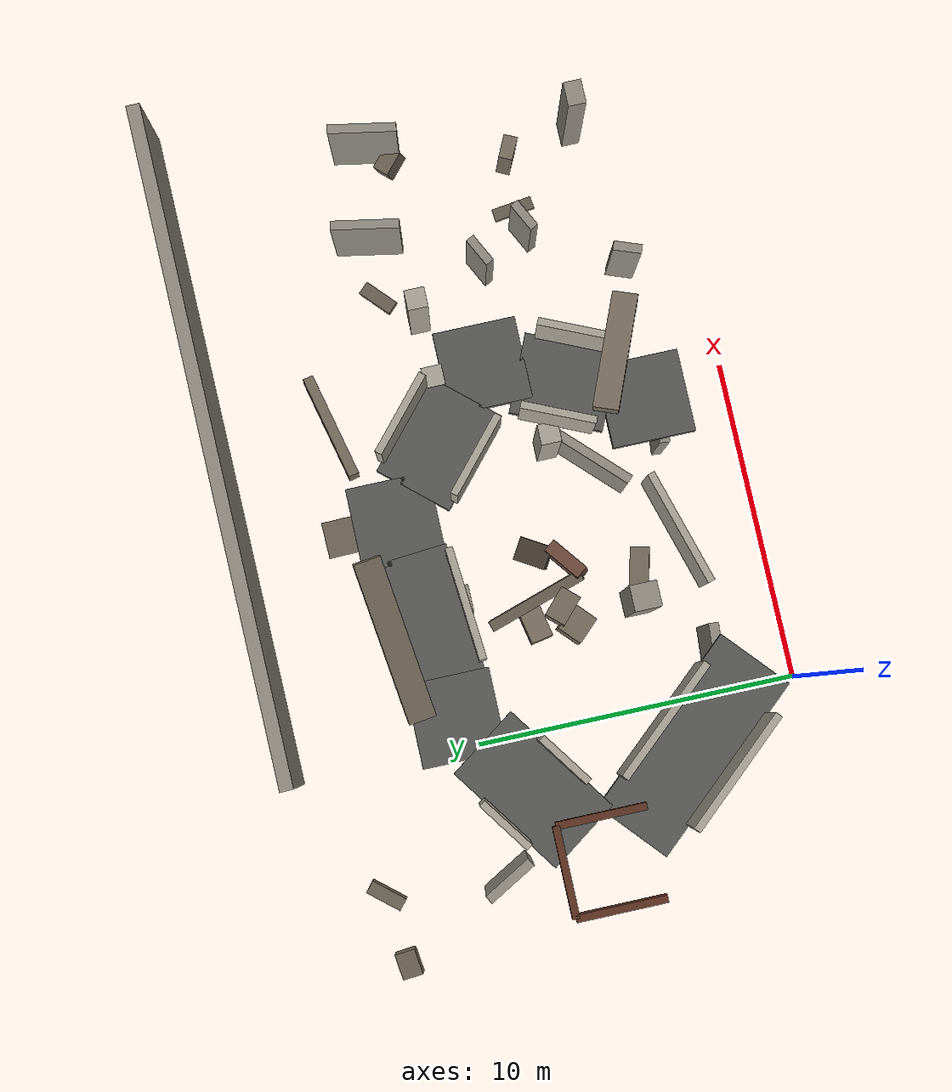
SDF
<sdf version="1.6">
 <model name="ruins_urban_01_medium">
  <static>true</static>
  <link name="002_north_boundary_east">
   <pose>10.50000 15.90000 1.80000 0.00000 0.00000 0.01500</pose>
   <visual name="visual">
    <geometry><box><size>21.00000 0.42000 3.60000</size></box></geometry>
    <material>
     <ambient>0.580 0.560 0.520 1</ambient>
     <diffuse>0.580 0.560 0.520 1</diffuse>
     <specular>0.03 0.03 0.03 1</specular>
    </material>
   </visual>
   <collision name="collision">
    <geometry><box><size>21.00000 0.42000 3.60000</size></box></geometry>
    <surface>
     <contact><collide_bitmask>0x01</collide_bitmask></contact>
     <friction><ode><mu>1.0</mu><mu2>1.0</mu2></ode></friction>
    </surface>
   </collision>
  </link>
  <link name="016_ground_corridor_n4_n5_left">
   <pose>-3.94751 9.97361 1.57500 0.00000 0.00000 -1.06370</pose>
   <visual name="visual">
    <geometry><box><size>1.64782 0.28000 3.15000</size></box></geometry>
    <material>
     <ambient>0.580 0.560 0.520 1</ambient>
     <diffuse>0.580 0.560 0.520 1</diffuse>
     <specular>0.03 0.03 0.03 1</specular>
    </material>
   </visual>
   <collision name="collision">
    <geometry><box><size>1.64782 0.28000 3.15000</size></box></geometry>
    <surface>
     <contact><collide_bitmask>0x01</collide_bitmask></contact>
     <friction><ode><mu>1.0</mu><mu2>1.0</mu2></ode></friction>
    </surface>
   </collision>
  </link>
  <link name="026_ground_corridor_g7_en1_left">
   <pose>10.85071 3.46194 1.57500 0.00000 0.00000 1.22007</pose>
   <visual name="visual">
    <geometry><box><size>0.86578 0.28000 3.15000</size></box></geometry>
    <material>
     <ambient>0.580 0.560 0.520 1</ambient>
     <diffuse>0.580 0.560 0.520 1</diffuse>
     <specular>0.03 0.03 0.03 1</specular>
    </material>
   </visual>
   <collision name="collision">
    <geometry><box><size>0.86578 0.28000 3.15000</size></box></geometry>
    <surface>
     <contact><collide_bitmask>0x01</collide_bitmask></contact>
     <friction><ode><mu>1.0</mu><mu2>1.0</mu2></ode></friction>
    </surface>
   </collision>
  </link>
  <link name="027_ground_corridor_g7_en1_right">
   <pose>13.64929 2.43806 1.57500 0.00000 0.00000 1.22007</pose>
   <visual name="visual">
    <geometry><box><size>0.86578 0.28000 3.15000</size></box></geometry>
    <material>
     <ambient>0.580 0.560 0.520 1</ambient>
     <diffuse>0.580 0.560 0.520 1</diffuse>
     <specular>0.03 0.03 0.03 1</specular>
    </material>
   </visual>
   <collision name="collision">
    <geometry><box><size>0.86578 0.28000 3.15000</size></box></geometry>
    <surface>
     <contact><collide_bitmask>0x01</collide_bitmask></contact>
     <friction><ode><mu>1.0</mu><mu2>1.0</mu2></ode></friction>
    </surface>
   </collision>
  </link>
  <link name="028_ground_corridor_en1_en2_left">
   <pose>14.61316 6.77368 1.37500 0.00000 0.00000 0.46365</pose>
   <visual name="visual">
    <geometry><box><size>0.97214 0.28000 2.75000</size></box></geometry>
    <material>
     <ambient>0.580 0.560 0.520 1</ambient>
     <diffuse>0.580 0.560 0.520 1</diffuse>
     <specular>0.03 0.03 0.03 1</specular>
    </material>
   </visual>
   <collision name="collision">
    <geometry><box><size>0.97214 0.28000 2.75000</size></box></geometry>
    <surface>
     <contact><collide_bitmask>0x01</collide_bitmask></contact>
     <friction><ode><mu>1.0</mu><mu2>1.0</mu2></ode></friction>
    </surface>
   </collision>
  </link>
  <link name="029_ground_corridor_en1_en2_right">
   <pose>15.38684 5.22632 1.37500 0.00000 0.00000 0.46365</pose>
   <visual name="visual">
    <geometry><box><size>0.97214 0.28000 2.75000</size></box></geometry>
    <material>
     <ambient>0.580 0.560 0.520 1</ambient>
     <diffuse>0.580 0.560 0.520 1</diffuse>
     <specular>0.03 0.03 0.03 1</specular>
    </material>
   </visual>
   <collision name="collision">
    <geometry><box><size>0.97214 0.28000 2.75000</size></box></geometry>
    <surface>
     <contact><collide_bitmask>0x01</collide_bitmask></contact>
     <friction><ode><mu>1.0</mu><mu2>1.0</mu2></ode></friction>
    </surface>
   </collision>
  </link>
  <link name="030_ground_corridor_en2_dead_ne_left">
   <pose>16.03403 10.01654 1.57500 0.00000 0.00000 1.39094</pose>
   <visual name="visual">
    <geometry><box><size>2.09017 0.28000 3.15000</size></box></geometry>
    <material>
     <ambient>0.580 0.560 0.520 1</ambient>
     <diffuse>0.580 0.560 0.520 1</diffuse>
     <specular>0.03 0.03 0.03 1</specular>
    </material>
   </visual>
   <collision name="collision">
    <geometry><box><size>2.09017 0.28000 3.15000</size></box></geometry>
    <surface>
     <contact><collide_bitmask>0x01</collide_bitmask></contact>
     <friction><ode><mu>1.0</mu><mu2>1.0</mu2></ode></friction>
    </surface>
   </collision>
  </link>
  <link name="031_ground_corridor_en2_dead_ne_right">
   <pose>18.96597 9.48346 1.57500 0.00000 0.00000 1.39094</pose>
   <visual name="visual">
    <geometry><box><size>2.09017 0.28000 3.15000</size></box></geometry>
    <material>
     <ambient>0.580 0.560 0.520 1</ambient>
     <diffuse>0.580 0.560 0.520 1</diffuse>
     <specular>0.03 0.03 0.03 1</specular>
    </material>
   </visual>
   <collision name="collision">
    <geometry><box><size>2.09017 0.28000 3.15000</size></box></geometry>
    <surface>
     <contact><collide_bitmask>0x01</collide_bitmask></contact>
     <friction><ode><mu>1.0</mu><mu2>1.0</mu2></ode></friction>
    </surface>
   </collision>
  </link>
  <link name="040_spine_broken_panel_04">
   <pose>0.85000 2.55000 1.42500 0.00000 0.00000 -0.07983</pose>
   <visual name="visual">
    <geometry><box><size>2.50799 0.30000 2.85000</size></box></geometry>
    <material>
     <ambient>0.580 0.560 0.520 1</ambient>
     <diffuse>0.580 0.560 0.520 1</diffuse>
     <specular>0.03 0.03 0.03 1</specular>
    </material>
   </visual>
   <collision name="collision">
    <geometry><box><size>2.50799 0.30000 2.85000</size></box></geometry>
    <surface>
     <contact><collide_bitmask>0x01</collide_bitmask></contact>
     <friction><ode><mu>1.0</mu><mu2>1.0</mu2></ode></friction>
    </surface>
   </collision>
  </link>
  <link name="042_spine_broken_panel_06">
   <pose>8.90000 2.47500 1.30000 0.00000 0.00000 -0.10379</pose>
   <visual name="visual">
    <geometry><box><size>2.41299 0.30000 2.60000</size></box></geometry>
    <material>
     <ambient>0.580 0.560 0.520 1</ambient>
     <diffuse>0.580 0.560 0.520 1</diffuse>
     <specular>0.03 0.03 0.03 1</specular>
    </material>
   </visual>
   <collision name="collision">
    <geometry><box><size>2.41299 0.30000 2.60000</size></box></geometry>
    <surface>
     <contact><collide_bitmask>0x01</collide_bitmask></contact>
     <friction><ode><mu>1.0</mu><mu2>1.0</mu2></ode></friction>
    </surface>
   </collision>
  </link>
  <link name="054_fixed_column_03">
   <pose>8.60000 6.00000 1.75000 0.00000 0.00000 0.00000</pose>
   <visual name="visual">
    <geometry><box><size>0.62000 0.62000 3.50000</size></box></geometry>
    <material>
     <ambient>0.680 0.660 0.610 1</ambient>
     <diffuse>0.680 0.660 0.610 1</diffuse>
     <specular>0.03 0.03 0.03 1</specular>
    </material>
   </visual>
   <collision name="collision">
    <geometry><box><size>0.62000 0.62000 3.50000</size></box></geometry>
    <surface>
     <contact><collide_bitmask>0x01</collide_bitmask></contact>
     <friction><ode><mu>1.0</mu><mu2>1.0</mu2></ode></friction>
    </surface>
   </collision>
  </link>
  <link name="055_fixed_column_07">
   <pose>11.00000 9.00000 1.75000 0.00000 0.00000 0.00000</pose>
   <visual name="visual">
    <geometry><box><size>0.62000 0.62000 3.50000</size></box></geometry>
    <material>
     <ambient>0.680 0.660 0.610 1</ambient>
     <diffuse>0.680 0.660 0.610 1</diffuse>
     <specular>0.03 0.03 0.03 1</specular>
    </material>
   </visual>
   <collision name="collision">
    <geometry><box><size>0.62000 0.62000 3.50000</size></box></geometry>
    <surface>
     <contact><collide_bitmask>0x01</collide_bitmask></contact>
     <friction><ode><mu>1.0</mu><mu2>1.0</mu2></ode></friction>
    </surface>
   </collision>
  </link>
  <link name="056_fixed_column_08">
   <pose>13.40000 9.00000 1.75000 0.00000 0.00000 0.00000</pose>
   <visual name="visual">
    <geometry><box><size>0.62000 0.62000 3.50000</size></box></geometry>
    <material>
     <ambient>0.680 0.660 0.610 1</ambient>
     <diffuse>0.680 0.660 0.610 1</diffuse>
     <specular>0.03 0.03 0.03 1</specular>
    </material>
   </visual>
   <collision name="collision">
    <geometry><box><size>0.62000 0.62000 3.50000</size></box></geometry>
    <surface>
     <contact><collide_bitmask>0x01</collide_bitmask></contact>
     <friction><ode><mu>1.0</mu><mu2>1.0</mu2></ode></friction>
    </surface>
   </collision>
  </link>
  <link name="063_upper_walkway_ua_u1">
   <pose>-1.50000 8.75000 3.36000 0.00000 0.00000 0.61073</pose>
   <visual name="visual">
    <geometry><box><size>4.00328 2.45000 0.24000</size></box></geometry>
    <material>
     <ambient>0.350 0.350 0.340 1</ambient>
     <diffuse>0.350 0.350 0.340 1</diffuse>
     <specular>0.03 0.03 0.03 1</specular>
    </material>
   </visual>
   <collision name="collision">
    <geometry><box><size>4.00328 2.45000 0.24000</size></box></geometry>
    <surface>
     <contact><collide_bitmask>0x01</collide_bitmask></contact>
     <friction><ode><mu>1.0</mu><mu2>1.0</mu2></ode></friction>
    </surface>
   </collision>
  </link>
  <link name="064_upper_corridor_ua_u1_left">
   <pose>-2.20823 9.76175 4.38000 0.00000 0.00000 0.61073</pose>
   <visual name="visual">
    <geometry><box><size>1.80328 0.22000 2.00000</size></box></geometry>
    <material>
     <ambient>0.680 0.660 0.610 1</ambient>
     <diffuse>0.680 0.660 0.610 1</diffuse>
     <specular>0.03 0.03 0.03 1</specular>
    </material>
   </visual>
   <collision name="collision">
    <geometry><box><size>1.80328 0.22000 2.00000</size></box></geometry>
    <surface>
     <contact><collide_bitmask>0x01</collide_bitmask></contact>
     <friction><ode><mu>1.0</mu><mu2>1.0</mu2></ode></friction>
    </surface>
   </collision>
  </link>
  <link name="065_upper_corridor_ua_u1_right">
   <pose>-0.79177 7.73825 4.38000 0.00000 0.00000 0.61073</pose>
   <visual name="visual">
    <geometry><box><size>1.80328 0.22000 2.00000</size></box></geometry>
    <material>
     <ambient>0.680 0.660 0.610 1</ambient>
     <diffuse>0.680 0.660 0.610 1</diffuse>
     <specular>0.03 0.03 0.03 1</specular>
    </material>
   </visual>
   <collision name="collision">
    <geometry><box><size>1.80328 0.22000 2.00000</size></box></geometry>
    <surface>
     <contact><collide_bitmask>0x01</collide_bitmask></contact>
     <friction><ode><mu>1.0</mu><mu2>1.0</mu2></ode></friction>
    </surface>
   </collision>
  </link>
  <link name="066_upper_walkway_u1_u2">
   <pose>4.00000 10.75000 3.36000 0.00000 0.00000 0.08314</pose>
   <visual name="visual">
    <geometry><box><size>3.92080 2.45000 0.24000</size></box></geometry>
    <material>
     <ambient>0.350 0.350 0.340 1</ambient>
     <diffuse>0.350 0.350 0.340 1</diffuse>
     <specular>0.03 0.03 0.03 1</specular>
    </material>
   </visual>
   <collision name="collision">
    <geometry><box><size>3.92080 2.45000 0.24000</size></box></geometry>
    <surface>
     <contact><collide_bitmask>0x01</collide_bitmask></contact>
     <friction><ode><mu>1.0</mu><mu2>1.0</mu2></ode></friction>
    </surface>
   </collision>
  </link>
  <link name="067_upper_corridor_u1_u2_left">
   <pose>3.89744 11.98073 4.38000 0.00000 0.00000 0.08314</pose>
   <visual name="visual">
    <geometry><box><size>3.32080 0.22000 2.00000</size></box></geometry>
    <material>
     <ambient>0.680 0.660 0.610 1</ambient>
     <diffuse>0.680 0.660 0.610 1</diffuse>
     <specular>0.03 0.03 0.03 1</specular>
    </material>
   </visual>
   <collision name="collision">
    <geometry><box><size>3.32080 0.22000 2.00000</size></box></geometry>
    <surface>
     <contact><collide_bitmask>0x01</collide_bitmask></contact>
     <friction><ode><mu>1.0</mu><mu2>1.0</mu2></ode></friction>
    </surface>
   </collision>
  </link>
  <link name="068_upper_corridor_u1_u2_right">
   <pose>4.10256 9.51927 4.38000 0.00000 0.00000 0.08314</pose>
   <visual name="visual">
    <geometry><box><size>3.32080 0.22000 2.00000</size></box></geometry>
    <material>
     <ambient>0.680 0.660 0.610 1</ambient>
     <diffuse>0.680 0.660 0.610 1</diffuse>
     <specular>0.03 0.03 0.03 1</specular>
    </material>
   </visual>
   <collision name="collision">
    <geometry><box><size>3.32080 0.22000 2.00000</size></box></geometry>
    <surface>
     <contact><collide_bitmask>0x01</collide_bitmask></contact>
     <friction><ode><mu>1.0</mu><mu2>1.0</mu2></ode></friction>
    </surface>
   </collision>
  </link>
  <link name="069_upper_walkway_u2_u3">
   <pose>9.00000 9.25000 3.36000 0.00000 0.00000 -0.71883</pose>
   <visual name="visual">
    <geometry><box><size>3.21507 2.45000 0.24000</size></box></geometry>
    <material>
     <ambient>0.350 0.350 0.340 1</ambient>
     <diffuse>0.350 0.350 0.340 1</diffuse>
     <specular>0.03 0.03 0.03 1</specular>
    </material>
   </visual>
   <collision name="collision">
    <geometry><box><size>3.21507 2.45000 0.24000</size></box></geometry>
    <surface>
     <contact><collide_bitmask>0x01</collide_bitmask></contact>
     <friction><ode><mu>1.0</mu><mu2>1.0</mu2></ode></friction>
    </surface>
   </collision>
  </link>
  <link name="070_upper_corridor_u2_u3_left">
   <pose>9.81325 10.17943 4.38000 0.00000 0.00000 -0.71883</pose>
   <visual name="visual">
    <geometry><box><size>2.61507 0.22000 2.00000</size></box></geometry>
    <material>
     <ambient>0.680 0.660 0.610 1</ambient>
     <diffuse>0.680 0.660 0.610 1</diffuse>
     <specular>0.03 0.03 0.03 1</specular>
    </material>
   </visual>
   <collision name="collision">
    <geometry><box><size>2.61507 0.22000 2.00000</size></box></geometry>
    <surface>
     <contact><collide_bitmask>0x01</collide_bitmask></contact>
     <friction><ode><mu>1.0</mu><mu2>1.0</mu2></ode></friction>
    </surface>
   </collision>
  </link>
  <link name="071_upper_corridor_u2_u3_right">
   <pose>8.18675 8.32057 4.38000 0.00000 0.00000 -0.71883</pose>
   <visual name="visual">
    <geometry><box><size>2.61507 0.22000 2.00000</size></box></geometry>
    <material>
     <ambient>0.680 0.660 0.610 1</ambient>
     <diffuse>0.680 0.660 0.610 1</diffuse>
     <specular>0.03 0.03 0.03 1</specular>
    </material>
   </visual>
   <collision name="collision">
    <geometry><box><size>2.61507 0.22000 2.00000</size></box></geometry>
    <surface>
     <contact><collide_bitmask>0x01</collide_bitmask></contact>
     <friction><ode><mu>1.0</mu><mu2>1.0</mu2></ode></friction>
    </surface>
   </collision>
  </link>
  <link name="072_upper_walkway_u3_u4">
   <pose>10.00000 5.25000 3.36000 0.00000 0.00000 -1.98902</pose>
   <visual name="visual">
    <geometry><box><size>2.82443 2.45000 0.24000</size></box></geometry>
    <material>
     <ambient>0.350 0.350 0.340 1</ambient>
     <diffuse>0.350 0.350 0.340 1</diffuse>
     <specular>0.03 0.03 0.03 1</specular>
    </material>
   </visual>
   <collision name="collision">
    <geometry><box><size>2.82443 2.45000 0.24000</size></box></geometry>
    <surface>
     <contact><collide_bitmask>0x01</collide_bitmask></contact>
     <friction><ode><mu>1.0</mu><mu2>1.0</mu2></ode></friction>
    </surface>
   </collision>
  </link>
  <link name="073_upper_corridor_u3_u4_left">
   <pose>11.12856 4.74842 4.38000 0.00000 0.00000 -1.98902</pose>
   <visual name="visual">
    <geometry><box><size>2.22443 0.22000 2.00000</size></box></geometry>
    <material>
     <ambient>0.680 0.660 0.610 1</ambient>
     <diffuse>0.680 0.660 0.610 1</diffuse>
     <specular>0.03 0.03 0.03 1</specular>
    </material>
   </visual>
   <collision name="collision">
    <geometry><box><size>2.22443 0.22000 2.00000</size></box></geometry>
    <surface>
     <contact><collide_bitmask>0x01</collide_bitmask></contact>
     <friction><ode><mu>1.0</mu><mu2>1.0</mu2></ode></friction>
    </surface>
   </collision>
  </link>
  <link name="074_upper_corridor_u3_u4_right">
   <pose>8.87144 5.75158 4.38000 0.00000 0.00000 -1.98902</pose>
   <visual name="visual">
    <geometry><box><size>2.22443 0.22000 2.00000</size></box></geometry>
    <material>
     <ambient>0.680 0.660 0.610 1</ambient>
     <diffuse>0.680 0.660 0.610 1</diffuse>
     <specular>0.03 0.03 0.03 1</specular>
    </material>
   </visual>
   <collision name="collision">
    <geometry><box><size>2.22443 0.22000 2.00000</size></box></geometry>
    <surface>
     <contact><collide_bitmask>0x01</collide_bitmask></contact>
     <friction><ode><mu>1.0</mu><mu2>1.0</mu2></ode></friction>
    </surface>
   </collision>
  </link>
  <link name="077_upper_corridor_u4_uc_right">
   <pose>4.90238 3.08507 4.38000 0.00000 0.00000 -2.85626</pose>
   <visual name="visual">
    <geometry><box><size>3.51601 0.22000 2.00000</size></box></geometry>
    <material>
     <ambient>0.680 0.660 0.610 1</ambient>
     <diffuse>0.680 0.660 0.610 1</diffuse>
     <specular>0.03 0.03 0.03 1</specular>
    </material>
   </visual>
   <collision name="collision">
    <geometry><box><size>3.51601 0.22000 2.00000</size></box></geometry>
    <surface>
     <contact><collide_bitmask>0x01</collide_bitmask></contact>
     <friction><ode><mu>1.0</mu><mu2>1.0</mu2></ode></friction>
    </surface>
   </collision>
  </link>
  <link name="078_upper_walkway_uc_ua">
   <pose>-1.25000 3.90000 3.36000 0.00000 0.00000 2.29644</pose>
   <visual name="visual">
    <geometry><box><size>6.18794 2.45000 0.24000</size></box></geometry>
    <material>
     <ambient>0.350 0.350 0.340 1</ambient>
     <diffuse>0.350 0.350 0.340 1</diffuse>
     <specular>0.03 0.03 0.03 1</specular>
    </material>
   </visual>
   <collision name="collision">
    <geometry><box><size>6.18794 2.45000 0.24000</size></box></geometry>
    <surface>
     <contact><collide_bitmask>0x01</collide_bitmask></contact>
     <friction><ode><mu>1.0</mu><mu2>1.0</mu2></ode></friction>
    </surface>
   </collision>
  </link>
  <link name="079_upper_corridor_uc_ua_left">
   <pose>-2.17387 3.08044 4.38000 0.00000 0.00000 2.29644</pose>
   <visual name="visual">
    <geometry><box><size>3.98794 0.22000 2.00000</size></box></geometry>
    <material>
     <ambient>0.680 0.660 0.610 1</ambient>
     <diffuse>0.680 0.660 0.610 1</diffuse>
     <specular>0.03 0.03 0.03 1</specular>
    </material>
   </visual>
   <collision name="collision">
    <geometry><box><size>3.98794 0.22000 2.00000</size></box></geometry>
    <surface>
     <contact><collide_bitmask>0x01</collide_bitmask></contact>
     <friction><ode><mu>1.0</mu><mu2>1.0</mu2></ode></friction>
    </surface>
   </collision>
  </link>
  <link name="080_upper_corridor_uc_ua_right">
   <pose>-0.32613 4.71956 4.38000 0.00000 0.00000 2.29644</pose>
   <visual name="visual">
    <geometry><box><size>3.98794 0.22000 2.00000</size></box></geometry>
    <material>
     <ambient>0.680 0.660 0.610 1</ambient>
     <diffuse>0.680 0.660 0.610 1</diffuse>
     <specular>0.03 0.03 0.03 1</specular>
    </material>
   </visual>
   <collision name="collision">
    <geometry><box><size>3.98794 0.22000 2.00000</size></box></geometry>
    <surface>
     <contact><collide_bitmask>0x01</collide_bitmask></contact>
     <friction><ode><mu>1.0</mu><mu2>1.0</mu2></ode></friction>
    </surface>
   </collision>
  </link>
  <link name="081_upper_node_platform_u1">
   <pose>1.00000 10.50000 3.36000 0.00000 0.00000 0.00000</pose>
   <visual name="visual">
    <geometry><box><size>2.50000 2.50000 0.24000</size></box></geometry>
    <material>
     <ambient>0.350 0.350 0.340 1</ambient>
     <diffuse>0.350 0.350 0.340 1</diffuse>
     <specular>0.03 0.03 0.03 1</specular>
    </material>
   </visual>
   <collision name="collision">
    <geometry><box><size>2.50000 2.50000 0.24000</size></box></geometry>
    <surface>
     <contact><collide_bitmask>0x01</collide_bitmask></contact>
     <friction><ode><mu>1.0</mu><mu2>1.0</mu2></ode></friction>
    </surface>
   </collision>
  </link>
  <link name="082_upper_node_platform_u2">
   <pose>7.00000 11.00000 3.36000 0.00000 0.00000 0.00000</pose>
   <visual name="visual">
    <geometry><box><size>2.50000 2.50000 0.24000</size></box></geometry>
    <material>
     <ambient>0.350 0.350 0.340 1</ambient>
     <diffuse>0.350 0.350 0.340 1</diffuse>
     <specular>0.03 0.03 0.03 1</specular>
    </material>
   </visual>
   <collision name="collision">
    <geometry><box><size>2.50000 2.50000 0.24000</size></box></geometry>
    <surface>
     <contact><collide_bitmask>0x01</collide_bitmask></contact>
     <friction><ode><mu>1.0</mu><mu2>1.0</mu2></ode></friction>
    </surface>
   </collision>
  </link>
  <link name="083_upper_node_platform_u3">
   <pose>11.00000 7.50000 3.36000 0.00000 0.00000 0.00000</pose>
   <visual name="visual">
    <geometry><box><size>2.50000 2.50000 0.24000</size></box></geometry>
    <material>
     <ambient>0.350 0.350 0.340 1</ambient>
     <diffuse>0.350 0.350 0.340 1</diffuse>
     <specular>0.03 0.03 0.03 1</specular>
    </material>
   </visual>
   <collision name="collision">
    <geometry><box><size>2.50000 2.50000 0.24000</size></box></geometry>
    <surface>
     <contact><collide_bitmask>0x01</collide_bitmask></contact>
     <friction><ode><mu>1.0</mu><mu2>1.0</mu2></ode></friction>
    </surface>
   </collision>
  </link>
  <link name="084_upper_node_platform_u4">
   <pose>9.00000 3.00000 3.36000 0.00000 0.00000 0.00000</pose>
   <visual name="visual">
    <geometry><box><size>2.50000 2.50000 0.24000</size></box></geometry>
    <material>
     <ambient>0.350 0.350 0.340 1</ambient>
     <diffuse>0.350 0.350 0.340 1</diffuse>
     <specular>0.03 0.03 0.03 1</specular>
    </material>
   </visual>
   <collision name="collision">
    <geometry><box><size>2.50000 2.50000 0.24000</size></box></geometry>
    <surface>
     <contact><collide_bitmask>0x01</collide_bitmask></contact>
     <friction><ode><mu>1.0</mu><mu2>1.0</mu2></ode></friction>
    </surface>
   </collision>
  </link>
  <link name="085_connector_01_frame_0">
   <pose>-5.35000 7.00000 3.55000 0.00000 0.00000 0.00000</pose>
   <visual name="visual">
    <geometry><box><size>0.22000 2.70000 0.42000</size></box></geometry>
    <material>
     <ambient>0.370 0.200 0.130 1</ambient>
     <diffuse>0.370 0.200 0.130 1</diffuse>
     <specular>0.03 0.03 0.03 1</specular>
    </material>
   </visual>
   <collision name="collision">
    <geometry><box><size>0.22000 2.70000 0.42000</size></box></geometry>
    <surface>
     <contact><collide_bitmask>0x01</collide_bitmask></contact>
     <friction><ode><mu>1.0</mu><mu2>1.0</mu2></ode></friction>
    </surface>
   </collision>
  </link>
  <link name="086_connector_01_frame_1">
   <pose>-2.65000 7.00000 3.55000 0.00000 0.00000 0.00000</pose>
   <visual name="visual">
    <geometry><box><size>0.22000 2.70000 0.42000</size></box></geometry>
    <material>
     <ambient>0.370 0.200 0.130 1</ambient>
     <diffuse>0.370 0.200 0.130 1</diffuse>
     <specular>0.03 0.03 0.03 1</specular>
    </material>
   </visual>
   <collision name="collision">
    <geometry><box><size>0.22000 2.70000 0.42000</size></box></geometry>
    <surface>
     <contact><collide_bitmask>0x01</collide_bitmask></contact>
     <friction><ode><mu>1.0</mu><mu2>1.0</mu2></ode></friction>
    </surface>
   </collision>
  </link>
  <link name="087_connector_01_frame_3">
   <pose>-4.00000 8.35000 3.55000 0.00000 0.00000 0.00000</pose>
   <visual name="visual">
    <geometry><box><size>2.70000 0.22000 0.42000</size></box></geometry>
    <material>
     <ambient>0.370 0.200 0.130 1</ambient>
     <diffuse>0.370 0.200 0.130 1</diffuse>
     <specular>0.03 0.03 0.03 1</specular>
    </material>
   </visual>
   <collision name="collision">
    <geometry><box><size>2.70000 0.22000 0.42000</size></box></geometry>
    <surface>
     <contact><collide_bitmask>0x01</collide_bitmask></contact>
     <friction><ode><mu>1.0</mu><mu2>1.0</mu2></ode></friction>
    </surface>
   </collision>
  </link>
  <link name="091_medium_random_column_00">
   <pose>4.37545 9.60176 1.54215 0.00000 0.00000 0.00000</pose>
   <visual name="visual">
    <geometry><box><size>0.79094 0.57950 3.08430</size></box></geometry>
    <material>
     <ambient>0.580 0.560 0.520 1</ambient>
     <diffuse>0.580 0.560 0.520 1</diffuse>
     <specular>0.03 0.03 0.03 1</specular>
    </material>
   </visual>
   <collision name="collision">
    <geometry><box><size>0.79094 0.57950 3.08430</size></box></geometry>
    <surface>
     <contact><collide_bitmask>0x01</collide_bitmask></contact>
     <friction><ode><mu>1.0</mu><mu2>1.0</mu2></ode></friction>
    </surface>
   </collision>
  </link>
  <link name="092_medium_random_column_01">
   <pose>18.41635 3.04236 1.93369 0.00000 0.00000 0.00000</pose>
   <visual name="visual">
    <geometry><box><size>0.75193 0.55234 3.86739</size></box></geometry>
    <material>
     <ambient>0.580 0.560 0.520 1</ambient>
     <diffuse>0.580 0.560 0.520 1</diffuse>
     <specular>0.03 0.03 0.03 1</specular>
    </material>
   </visual>
   <collision name="collision">
    <geometry><box><size>0.75193 0.55234 3.86739</size></box></geometry>
    <surface>
     <contact><collide_bitmask>0x01</collide_bitmask></contact>
     <friction><ode><mu>1.0</mu><mu2>1.0</mu2></ode></friction>
    </surface>
   </collision>
  </link>
  <link name="096_medium_random_column_05">
   <pose>3.28664 4.28935 1.71620 0.00000 0.00000 0.00000</pose>
   <visual name="visual">
    <geometry><box><size>0.79444 0.82719 3.43240</size></box></geometry>
    <material>
     <ambient>0.580 0.560 0.520 1</ambient>
     <diffuse>0.580 0.560 0.520 1</diffuse>
     <specular>0.03 0.03 0.03 1</specular>
    </material>
   </visual>
   <collision name="collision">
    <geometry><box><size>0.79444 0.82719 3.43240</size></box></geometry>
    <surface>
     <contact><collide_bitmask>0x01</collide_bitmask></contact>
     <friction><ode><mu>1.0</mu><mu2>1.0</mu2></ode></friction>
    </surface>
   </collision>
  </link>
  <link name="106_medium_rubble_005">
   <pose>-3.83362 13.75128 0.14204 -0.03830 0.13020 2.43233</pose>
   <visual name="visual">
    <geometry><box><size>0.42044 1.17123 0.28408</size></box></geometry>
    <material>
     <ambient>0.460 0.420 0.360 1</ambient>
     <diffuse>0.460 0.420 0.360 1</diffuse>
     <specular>0.03 0.03 0.03 1</specular>
    </material>
   </visual>
   <collision name="collision">
    <geometry><box><size>0.42044 1.17123 0.28408</size></box></geometry>
    <surface>
     <contact><collide_bitmask>0x01</collide_bitmask></contact>
     <friction><ode><mu>1.0</mu><mu2>1.0</mu2></ode></friction>
    </surface>
   </collision>
  </link>
  <link name="107_medium_rubble_006">
   <pose>18.56436 8.81960 0.44869 0.09717 0.16481 2.38536</pose>
   <visual name="visual">
    <geometry><box><size>0.80886 0.51883 0.89737</size></box></geometry>
    <material>
     <ambient>0.460 0.420 0.360 1</ambient>
     <diffuse>0.460 0.420 0.360 1</diffuse>
     <specular>0.03 0.03 0.03 1</specular>
    </material>
   </visual>
   <collision name="collision">
    <geometry><box><size>0.80886 0.51883 0.89737</size></box></geometry>
    <surface>
     <contact><collide_bitmask>0x01</collide_bitmask></contact>
     <friction><ode><mu>1.0</mu><mu2>1.0</mu2></ode></friction>
    </surface>
   </collision>
  </link>
  <link name="108_medium_rubble_007">
   <pose>5.44771 7.07024 0.34037 0.17706 0.10791 2.59756</pose>
   <visual name="visual">
    <geometry><box><size>0.74266 0.99080 0.68075</size></box></geometry>
    <material>
     <ambient>0.290 0.250 0.200 1</ambient>
     <diffuse>0.290 0.250 0.200 1</diffuse>
     <specular>0.03 0.03 0.03 1</specular>
    </material>
   </visual>
   <collision name="collision">
    <geometry><box><size>0.74266 0.99080 0.68075</size></box></geometry>
    <surface>
     <contact><collide_bitmask>0x01</collide_bitmask></contact>
     <friction><ode><mu>1.0</mu><mu2>1.0</mu2></ode></friction>
    </surface>
   </collision>
  </link>
  <link name="111_medium_rubble_010">
   <pose>3.01118 6.24913 0.24404 -0.09383 -0.10983 2.33394</pose>
   <visual name="visual">
    <geometry><box><size>0.93325 0.83894 0.48808</size></box></geometry>
    <material>
     <ambient>0.460 0.420 0.360 1</ambient>
     <diffuse>0.460 0.420 0.360 1</diffuse>
     <specular>0.03 0.03 0.03 1</specular>
    </material>
   </visual>
   <collision name="collision">
    <geometry><box><size>0.93325 0.83894 0.48808</size></box></geometry>
    <surface>
     <contact><collide_bitmask>0x01</collide_bitmask></contact>
     <friction><ode><mu>1.0</mu><mu2>1.0</mu2></ode></friction>
    </surface>
   </collision>
  </link>
  <link name="121_medium_rubble_020">
   <pose>4.98081 6.13992 0.55257 -0.02441 0.10776 0.64417</pose>
   <visual name="visual">
    <geometry><box><size>1.32738 0.43668 1.10515</size></box></geometry>
    <material>
     <ambient>0.430 0.290 0.230 1</ambient>
     <diffuse>0.430 0.290 0.230 1</diffuse>
     <specular>0.03 0.03 0.03 1</specular>
    </material>
   </visual>
   <collision name="collision">
    <geometry><box><size>1.32738 0.43668 1.10515</size></box></geometry>
    <surface>
     <contact><collide_bitmask>0x01</collide_bitmask></contact>
     <friction><ode><mu>1.0</mu><mu2>1.0</mu2></ode></friction>
    </surface>
   </collision>
  </link>
  <link name="123_medium_rubble_022">
   <pose>7.24317 12.58684 0.22713 -0.10352 -0.00330 1.58903</pose>
   <visual name="visual">
    <geometry><box><size>1.44444 1.12948 0.45425</size></box></geometry>
    <material>
     <ambient>0.460 0.420 0.360 1</ambient>
     <diffuse>0.460 0.420 0.360 1</diffuse>
     <specular>0.03 0.03 0.03 1</specular>
    </material>
   </visual>
   <collision name="collision">
    <geometry><box><size>1.44444 1.12948 0.45425</size></box></geometry>
    <surface>
     <contact><collide_bitmask>0x01</collide_bitmask></contact>
     <friction><ode><mu>1.0</mu><mu2>1.0</mu2></ode></friction>
    </surface>
   </collision>
  </link>
  <link name="126_medium_rubble_025">
   <pose>3.61307 6.56506 0.47468 0.02613 -0.01933 2.39511</pose>
   <visual name="visual">
    <geometry><box><size>1.00266 0.68011 0.94936</size></box></geometry>
    <material>
     <ambient>0.460 0.420 0.360 1</ambient>
     <diffuse>0.460 0.420 0.360 1</diffuse>
     <specular>0.03 0.03 0.03 1</specular>
    </material>
   </visual>
   <collision name="collision">
    <geometry><box><size>1.00266 0.68011 0.94936</size></box></geometry>
    <surface>
     <contact><collide_bitmask>0x01</collide_bitmask></contact>
     <friction><ode><mu>1.0</mu><mu2>1.0</mu2></ode></friction>
    </surface>
   </collision>
  </link>
  <link name="127_medium_rubble_026">
   <pose>4.20128 3.96183 0.16650 0.14082 -0.05232 2.87805</pose>
   <visual name="visual">
    <geometry><box><size>1.51904 0.60130 0.33299</size></box></geometry>
    <material>
     <ambient>0.460 0.420 0.360 1</ambient>
     <diffuse>0.460 0.420 0.360 1</diffuse>
     <specular>0.03 0.03 0.03 1</specular>
    </material>
   </visual>
   <collision name="collision">
    <geometry><box><size>1.51904 0.60130 0.33299</size></box></geometry>
    <surface>
     <contact><collide_bitmask>0x01</collide_bitmask></contact>
     <friction><ode><mu>1.0</mu><mu2>1.0</mu2></ode></friction>
    </surface>
   </collision>
  </link>
  <link name="131_medium_rubble_030">
   <pose>10.19105 9.83173 0.14071 -0.02500 0.05423 2.15499</pose>
   <visual name="visual">
    <geometry><box><size>1.43442 0.33864 0.28143</size></box></geometry>
    <material>
     <ambient>0.460 0.420 0.360 1</ambient>
     <diffuse>0.460 0.420 0.360 1</diffuse>
     <specular>0.03 0.03 0.03 1</specular>
    </material>
   </visual>
   <collision name="collision">
    <geometry><box><size>1.43442 0.33864 0.28143</size></box></geometry>
    <surface>
     <contact><collide_bitmask>0x01</collide_bitmask></contact>
     <friction><ode><mu>1.0</mu><mu2>1.0</mu2></ode></friction>
    </surface>
   </collision>
  </link>
  <link name="139_medium_rubble_038">
   <pose>14.35994 10.08624 0.41600 -0.10426 0.13199 2.31641</pose>
   <visual name="visual">
    <geometry><box><size>0.42850 1.12578 0.83200</size></box></geometry>
    <material>
     <ambient>0.460 0.420 0.360 1</ambient>
     <diffuse>0.460 0.420 0.360 1</diffuse>
     <specular>0.03 0.03 0.03 1</specular>
    </material>
   </visual>
   <collision name="collision">
    <geometry><box><size>0.42850 1.12578 0.83200</size></box></geometry>
    <surface>
     <contact><collide_bitmask>0x01</collide_bitmask></contact>
     <friction><ode><mu>1.0</mu><mu2>1.0</mu2></ode></friction>
    </surface>
   </collision>
  </link>
  <link name="140_medium_rubble_039">
   <pose>-5.98738 13.50771 0.17863 -0.13088 -0.12328 0.11950</pose>
   <visual name="visual">
    <geometry><box><size>0.81638 0.64190 0.35726</size></box></geometry>
    <material>
     <ambient>0.460 0.420 0.360 1</ambient>
     <diffuse>0.460 0.420 0.360 1</diffuse>
     <specular>0.03 0.03 0.03 1</specular>
    </material>
   </visual>
   <collision name="collision">
    <geometry><box><size>0.81638 0.64190 0.35726</size></box></geometry>
    <surface>
     <contact><collide_bitmask>0x01</collide_bitmask></contact>
     <friction><ode><mu>1.0</mu><mu2>1.0</mu2></ode></friction>
    </surface>
   </collision>
  </link>
  <link name="142_medium_rubble_041">
   <pose>16.31304 5.30246 0.19548 -0.16209 0.11314 1.67386</pose>
   <visual name="visual">
    <geometry><box><size>1.28448 0.38016 0.39097</size></box></geometry>
    <material>
     <ambient>0.460 0.420 0.360 1</ambient>
     <diffuse>0.460 0.420 0.360 1</diffuse>
     <specular>0.03 0.03 0.03 1</specular>
    </material>
   </visual>
   <collision name="collision">
    <geometry><box><size>1.28448 0.38016 0.39097</size></box></geometry>
    <surface>
     <contact><collide_bitmask>0x01</collide_bitmask></contact>
     <friction><ode><mu>1.0</mu><mu2>1.0</mu2></ode></friction>
    </surface>
   </collision>
  </link>
  <link name="144_medium_rubble_043">
   <pose>3.30435 7.50020 0.13459 0.11507 0.11239 0.19378</pose>
   <visual name="visual">
    <geometry><box><size>1.10704 0.70906 0.26919</size></box></geometry>
    <material>
     <ambient>0.460 0.420 0.360 1</ambient>
     <diffuse>0.460 0.420 0.360 1</diffuse>
     <specular>0.03 0.03 0.03 1</specular>
    </material>
   </visual>
   <collision name="collision">
    <geometry><box><size>1.10704 0.70906 0.26919</size></box></geometry>
    <surface>
     <contact><collide_bitmask>0x01</collide_bitmask></contact>
     <friction><ode><mu>1.0</mu><mu2>1.0</mu2></ode></friction>
    </surface>
   </collision>
  </link>
  <link name="146_medium_rubble_045">
   <pose>17.99355 5.14201 0.53852 -0.02532 -0.15835 2.69720</pose>
   <visual name="visual">
    <geometry><box><size>0.79872 0.43717 1.07705</size></box></geometry>
    <material>
     <ambient>0.460 0.420 0.360 1</ambient>
     <diffuse>0.460 0.420 0.360 1</diffuse>
     <specular>0.03 0.03 0.03 1</specular>
    </material>
   </visual>
   <collision name="collision">
    <geometry><box><size>0.79872 0.43717 1.07705</size></box></geometry>
    <surface>
     <contact><collide_bitmask>0x01</collide_bitmask></contact>
     <friction><ode><mu>1.0</mu><mu2>1.0</mu2></ode></friction>
    </surface>
   </collision>
  </link>
  <link name="153_medium_collapsed_wall_00">
   <pose>10.62265 12.39409 0.50683 0.05250 0.05764 0.22836</pose>
   <visual name="visual">
    <geometry><box><size>3.41679 0.32738 0.68088</size></box></geometry>
    <material>
     <ambient>0.460 0.420 0.360 1</ambient>
     <diffuse>0.460 0.420 0.360 1</diffuse>
     <specular>0.03 0.03 0.03 1</specular>
    </material>
   </visual>
   <collision name="collision">
    <geometry><box><size>3.41679 0.32738 0.68088</size></box></geometry>
    <surface>
     <contact><collide_bitmask>0x01</collide_bitmask></contact>
     <friction><ode><mu>1.0</mu><mu2>1.0</mu2></ode></friction>
    </surface>
   </collision>
  </link>
  <link name="155_medium_collapsed_wall_02">
   <pose>3.99262 7.30657 0.36770 -0.10935 0.17966 1.87310</pose>
   <visual name="visual">
    <geometry><box><size>3.23761 0.33652 0.37812</size></box></geometry>
    <material>
     <ambient>0.460 0.420 0.360 1</ambient>
     <diffuse>0.460 0.420 0.360 1</diffuse>
     <specular>0.03 0.03 0.03 1</specular>
    </material>
   </visual>
   <collision name="collision">
    <geometry><box><size>3.23761 0.33652 0.37812</size></box></geometry>
    <surface>
     <contact><collide_bitmask>0x01</collide_bitmask></contact>
     <friction><ode><mu>1.0</mu><mu2>1.0</mu2></ode></friction>
    </surface>
   </collision>
  </link>
  <link name="168_medium_broken_upper_slab_01">
   <pose>3.50000 11.70000 5.70000 0.08000 -0.22000 0.12000</pose>
   <visual name="visual">
    <geometry><box><size>4.80000 0.80000 0.34000</size></box></geometry>
    <material>
     <ambient>0.460 0.420 0.360 1</ambient>
     <diffuse>0.460 0.420 0.360 1</diffuse>
     <specular>0.03 0.03 0.03 1</specular>
    </material>
   </visual>
   <collision name="collision">
    <geometry><box><size>4.80000 0.80000 0.34000</size></box></geometry>
    <surface>
     <contact><collide_bitmask>0x01</collide_bitmask></contact>
     <friction><ode><mu>1.0</mu><mu2>1.0</mu2></ode></friction>
    </surface>
   </collision>
  </link>
  <link name="169_medium_broken_upper_slab_02">
   <pose>10.20000 3.80000 5.50000 -0.10000 0.18000 -0.40000</pose>
   <visual name="visual">
    <geometry><box><size>3.60000 0.75000 0.30000</size></box></geometry>
    <material>
     <ambient>0.460 0.420 0.360 1</ambient>
     <diffuse>0.460 0.420 0.360 1</diffuse>
     <specular>0.03 0.03 0.03 1</specular>
    </material>
   </visual>
   <collision name="collision">
    <geometry><box><size>3.60000 0.75000 0.30000</size></box></geometry>
    <surface>
     <contact><collide_bitmask>0x01</collide_bitmask></contact>
     <friction><ode><mu>1.0</mu><mu2>1.0</mu2></ode></friction>
    </surface>
   </collision>
  </link>
  <link name="171_medium_narrow_deflector_02">
   <pose>7.75000 4.85000 1.60000 0.00000 0.00000 0.78540</pose>
   <visual name="visual">
    <geometry><box><size>2.68701 0.28000 2.50000</size></box></geometry>
    <material>
     <ambient>0.580 0.560 0.520 1</ambient>
     <diffuse>0.580 0.560 0.520 1</diffuse>
     <specular>0.03 0.03 0.03 1</specular>
    </material>
   </visual>
   <collision name="collision">
    <geometry><box><size>2.68701 0.28000 2.50000</size></box></geometry>
    <surface>
     <contact><collide_bitmask>0x01</collide_bitmask></contact>
     <friction><ode><mu>1.0</mu><mu2>1.0</mu2></ode></friction>
    </surface>
   </collision>
  </link>
 </model>
</sdf>
